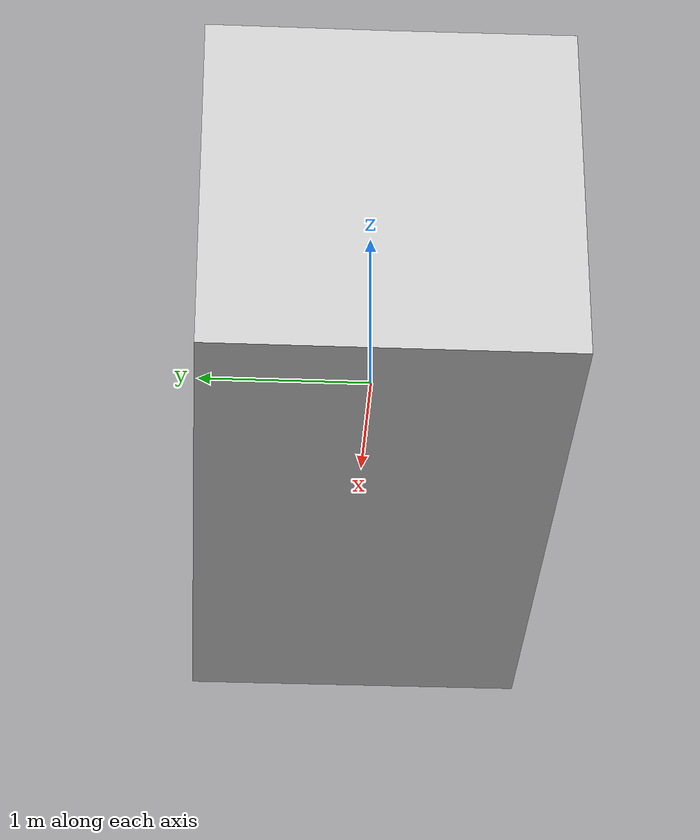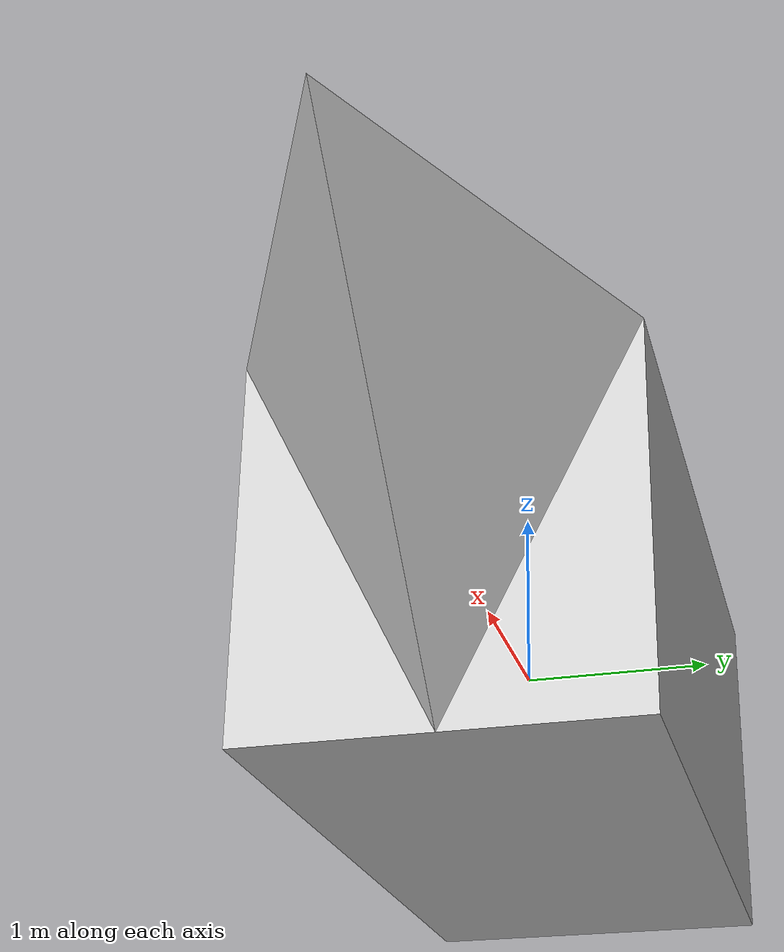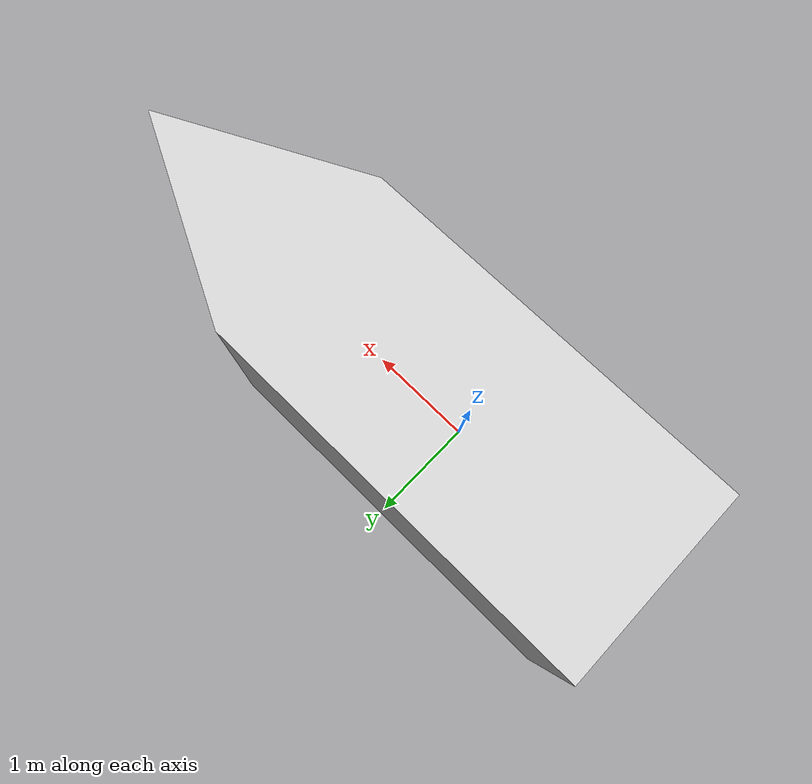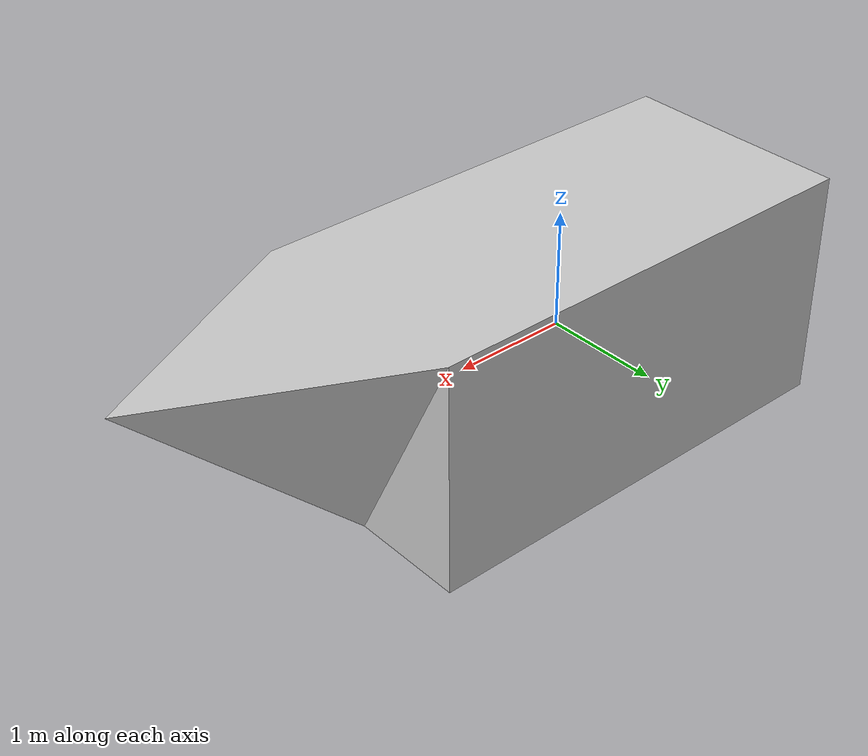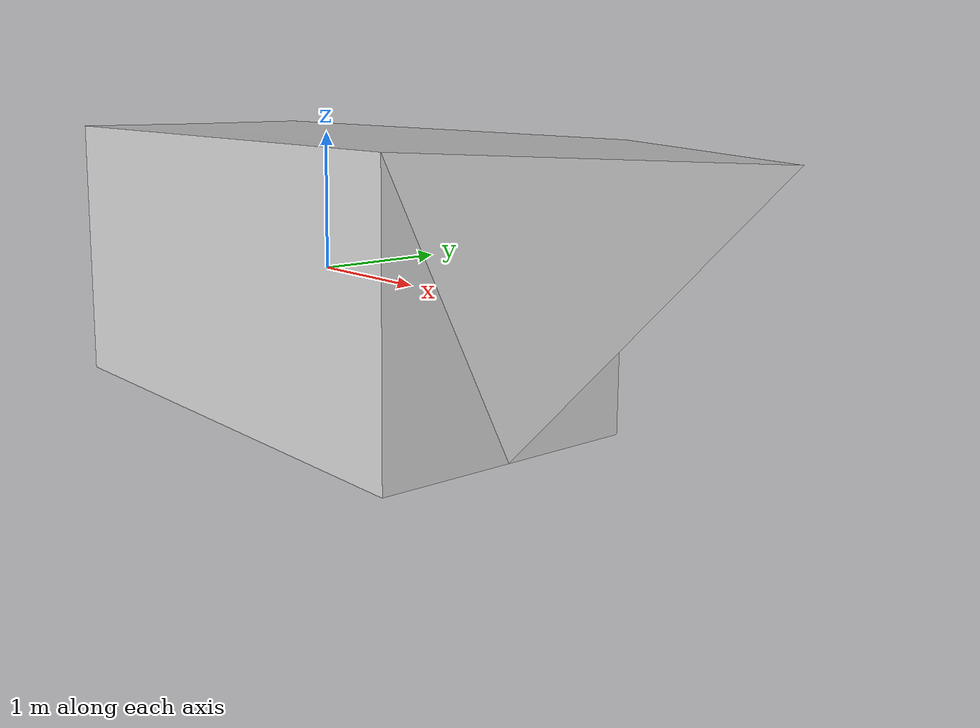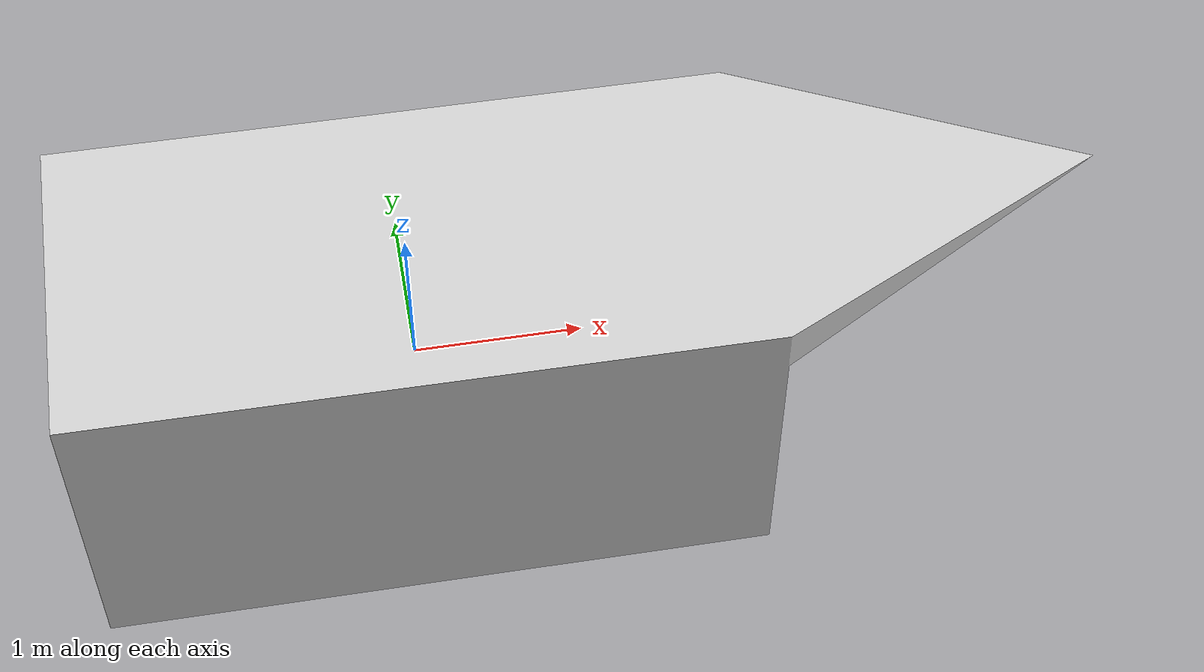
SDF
<?xml version="1.0"?>
<sdf version="1.6">
  <model name="1">
    <pose>0 0 0 0 0 0</pose>
    <static>true</static>

    <link name="link">
      <!-- 视觉外观 -->
      <visual name="visual">
        <geometry>
          <mesh>
            <uri>model://test.dae</uri>
            <scale>1.0 1.0 1.0</scale>
          </mesh>
        </geometry>
        <material>
          <ambient>0.8 0.8 0.8 1</ambient>
          <diffuse>0.8 0.8 0.8 1</diffuse>
          <specular>0.2 0.2 0.2 1</specular>
        </material>
      </visual>

      <!-- 碰撞几何体 - 修改为与视觉模型一致的mesh，防止深度相机穿模 -->
      <collision name="collision">
        <geometry>
          <mesh>
            <uri>model://test.dae</uri>
            <scale>1.0 1.0 1.0</scale>
          </mesh>
        </geometry>
      </collision>

      <!-- 物理属性 -->
      <inertial>
        <mass>2.409899</mass>
        <pose>0.999404 0.000000 0.003925 0 0 0</pose>
        <inertia>

              <ixx>1.612918</ixx>
              <ixy>0.0</ixy>
              <ixz>0.0</ixz>
              <iyy>8.042190</iyy>
              <iyz>0.0</iyz>
              <izz>8.035872</izz>
        </inertia>
      </inertial>
    </link>
  </model>
</sdf>
